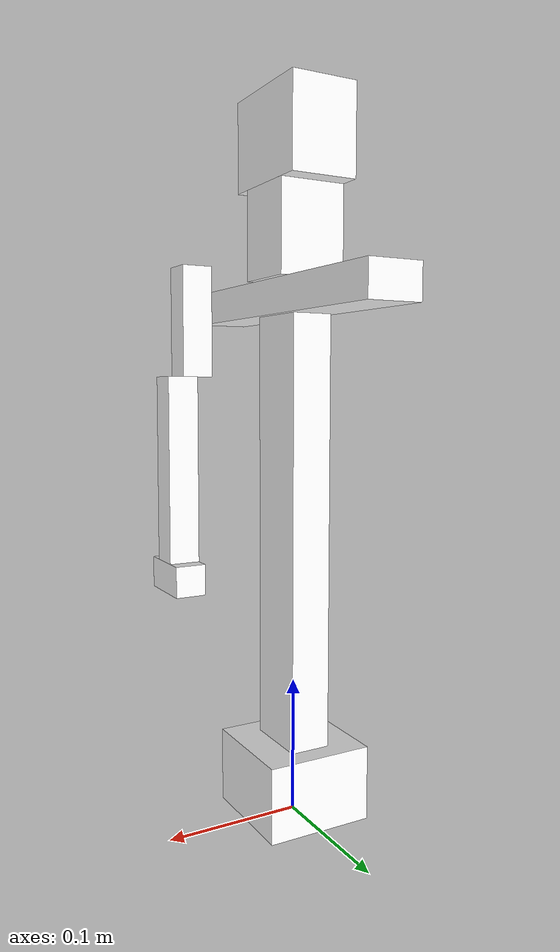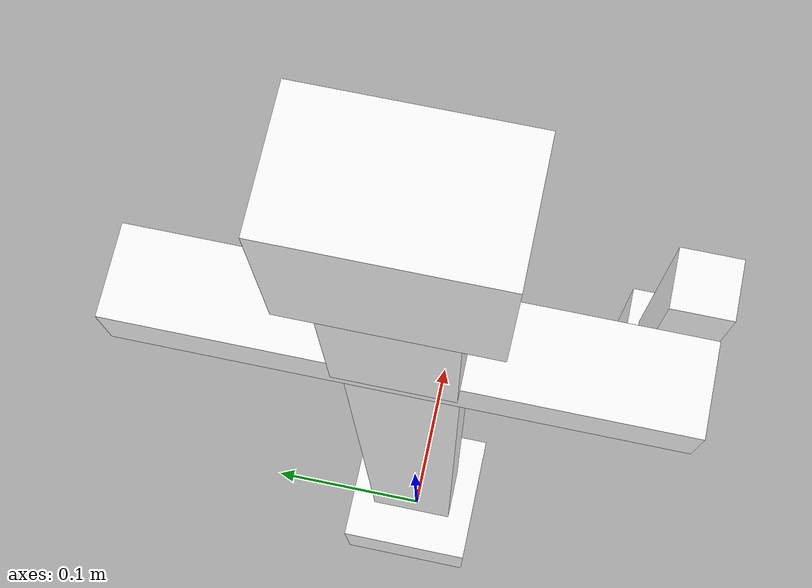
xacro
<?xml version="1.0" ?>
<!-- |    This document was autogenerated by xacro from /home/lucas/Desktop/robotics/natural_language_hubert/src/hubert_kinematics/urdf/test_robot.urdf.xacro | -->
<!-- |    EDITING THIS FILE BY HAND IS NOT RECOMMENDED                                 | -->
<robot name="hubert_robot">
    <material name="white">
        <color rgba="1 1 1 1" />
    </material>
    <link name="world" />
    <joint name="world_joint" type="fixed">
        <origin rpy="0 0 0" xyz="0 0 0" />
        <parent link="world" />
        <child link="base_link" />
    </joint>
    <link name="base_link">
        <visual>
            <origin rpy="0 0 0" xyz="0 0 0.0275" />
            <geometry>
                <box size="0.08 0.08 0.055" />
            </geometry>
            <material name="white" />
        </visual>
        <collision>
            <origin rpy="0 0 0" xyz="0 0 0.0275" />
            <geometry>
                <box size="0.08 0.08 0.055" />
            </geometry>
        </collision>
        <inertial>
            <origin rpy="0 0 0" xyz="0 0 0.0275" />
            <mass value="0.5" />
            <inertia ixx="0.0003927083333333333" ixy="0.0" ixz="0.0" iyy="0.0003927083333333333" iyz="0.0" izz="0.0005333333333333334" />
        </inertial>
    </link>
    <joint name="base_joint" type="revolute">
        <parent link="base_link" />
        <child link="body_link" />
        <origin rpy="0 0 0" xyz="0 0 0.055" />
        <axis xyz="0 0 1" />
        <limit effort="100" lower="-1.5707963267948966" upper="1.5707963267948966" velocity="100" />
    </joint>
    <link name="body_link">
        <visual>
            <origin rpy="0 0 0" xyz="0 0 0.1575" />
            <geometry>
                <box size="0.03 0.05 0.315" />
            </geometry>
            <material name="white" />
        </visual>
        <collision>
            <origin rpy="0 0 0" xyz="0 0 0.1575" />
            <geometry>
                <box size="0.03 0.05 0.315" />
            </geometry>
        </collision>
        <inertial>
            <origin rpy="0 0 0" xyz="0 0 0.1575" />
            <mass value="0.5" />
            <inertia ixx="0.0042385416666666665" ixy="0.0" ixz="0.0" iyy="0.004171875" iyz="0.0" izz="0.00014166666666666668" />
        </inertial>
    </link>
    <joint name="chest_joint" type="fixed">
        <parent link="body_link" />
        <child link="shoulder_link" />
        <origin rpy="0 0 0" xyz="0 0 0.315" />
    </joint>
    <link name="shoulder_link">
        <visual>
            <origin rpy="0 0 0" xyz="0 0 0.0125" />
            <geometry>
                <box size="0.04 0.24 0.025" />
            </geometry>
            <material name="white" />
        </visual>
        <collision>
            <origin rpy="0 0 0" xyz="0 0 0.0125" />
            <geometry>
                <box size="0.04 0.24 0.025" />
            </geometry>
        </collision>
        <inertial>
            <origin rpy="0 0 0" xyz="0 0 0.0125" />
            <mass value="0.5" />
            <inertia ixx="0.0024260416666666666" ixy="0.0" ixz="0.0" iyy="9.270833333333334e-05" iyz="0.0" izz="0.0024666666666666665" />
        </inertial>
    </link>
    <joint name="neck_joint" type="revolute">
        <parent link="shoulder_link" />
        <child link="neck_link" />
        <origin rpy="0 0 0" xyz="0 0 0.025" />
        <axis xyz="0 0 1" />
        <limit effort="100" lower="-1.5707963267948966" upper="1.5707963267948966" velocity="100" />
    </joint>
    <link name="neck_link">
        <visual>
            <origin rpy="0 0 0" xyz="0 0 0.0325" />
            <geometry>
                <box size="0.05 0.05 0.065" />
            </geometry>
            <material name="white" />
        </visual>
        <collision>
            <origin rpy="0 0 0" xyz="0 0 0.0325" />
            <geometry>
                <box size="0.05 0.05 0.065" />
            </geometry>
        </collision>
        <inertial>
            <origin rpy="0 0 0" xyz="0 0 0.0325" />
            <mass value="0.5" />
            <inertia ixx="0.00028020833333333337" ixy="0.0" ixz="0.0" iyy="0.00028020833333333337" iyz="0.0" izz="0.00020833333333333337" />
        </inertial>
    </link>
    <joint name="cam_joint" type="revolute">
        <parent link="neck_link" />
        <child link="cam_link" />
        <origin rpy="-1.57 0 0" xyz="0 0 0.065" />
        <axis xyz="0 0 1" />
        <limit effort="100" lower="-0.7853981633974483" upper="1.5707963267948966" velocity="100" />
    </joint>
    <!-- Here z => y and y => -z -->
    <link name="cam_link">
        <visual>
            <origin rpy="0 0 0" xyz="0 -0.0325 0" />
            <geometry>
                <box size="0.05 -0.065 0.08" />
            </geometry>
            <material name="white" />
        </visual>
        <collision>
            <origin rpy="0 0 0" xyz="0 -0.0325 0" />
            <geometry>
                <box size="0.05 0.065 0.08" />
            </geometry>
        </collision>
        <inertial>
            <origin rpy="0 0 0" xyz="0 -0.0325 0" />
            <mass value="0.5" />
            <inertia ixx="0.00044270833333333337" ixy="0.0" ixz="0.0" iyy="0.00037083333333333337" iyz="0.0" izz="0.00028020833333333337" />
        </inertial>
    </link>
    <joint name="camera_joint" type="fixed">
        <parent link="cam_link" />
        <child link="camera_link" />
        <origin rpy="0 1.5707963267948966 0" xyz="0 -0.07 0" />
    </joint>

    <link name="camera_link">
        <inertial>
            <mass value="0" />
            <inertia ixx="0" ixy="0" ixz="0" iyy="0" iyz="0" izz="0" />
        </inertial>
    </link>
    <joint name="shoulder_joint" type="revolute">
        <parent link="shoulder_link" />
        <child link="arm_link" />
        <origin rpy="1.57 0 0" xyz="0.034 -0.108 0.045" />
        <axis xyz="0 0 1" />
        <limit effort="100" lower="-0.5235987755982988" upper="1.5707963267948966" velocity="100" />
    </joint>
    <link name="arm_link">
        <visual>
            <origin rpy="0 0 0" xyz="0 -0.044 0" />
            <geometry>
                <box size="0.025 0.088 0.025" />
            </geometry>
            <material name="white" />
        </visual>
        <collision>
            <origin rpy="0 0 0" xyz="0 -0.044 0" />
            <geometry>
                <box size="0.025 0.088 0.025" />
            </geometry>
        </collision>
        <inertial>
            <origin rpy="0 0 0" xyz="0 -0.044 0" />
            <mass value="0.5" />
            <inertia ixx="0.0003487083333333333" ixy="0.0" ixz="0.0" iyy="5.2083333333333343e-05" iyz="0.0" izz="0.0003487083333333333" />
        </inertial>
    </link>
    <!-- Origin values to modify -->
    <!-- Should the origin be rotated again as the last joint already is? -->
    <joint name="elbow_joint" type="revolute">
        <parent link="arm_link" />
        <child link="forearm_link" />
        <origin rpy="0 0 0" xyz="0.015 -0.088 -0.005" />
        <axis xyz="0 0 1" />
        <limit effort="100" lower="-1.5707963267948966" upper="1.5707963267948966" velocity="100" />
    </joint>
    <link name="forearm_link">
        <visual>
            <origin rpy="0 0 0" xyz="0 -0.075 0 " />
            <geometry>
                <box size="0.025 0.15 0.025" />
            </geometry>
            <material name="white" />
        </visual>
        <collision>
            <origin rpy="0 0 0" xyz="0 -0.075 0" />
            <geometry>
                <box size="0.025 0.15 0.025" />
            </geometry>
        </collision>
        <inertial>
            <origin rpy="0 0 0" xyz="0 0 -0.102" />
            <mass value="0.5" />
            <inertia ixx="0.0017600416666666663" ixy="0.0" ixz="0.0" iyy="0.0017600416666666663" iyz="0.0" izz="5.2083333333333343e-05" />
        </inertial>
    </link>
    <!-- Axis values to modify -->
    <joint name="end_joint" type="fixed">
        <parent link="forearm_link" />
        <child link="end_effector" />
        <origin rpy="0 0 0" xyz="0 -0.15 0" />
        <axis xyz="0 0 0" />
    </joint>
    <link name="end_effector">
        <visual>
            <origin rpy="0 0 0" xyz="0 -0.0125 0" />
            <geometry>
                <box size="0.025 0.025 0.05" />
            </geometry>
            <material name="white" />
        </visual>
        <collision>
            <origin rpy="0 0 0" xyz="0 -0.0125 0" />
            <geometry>
                <box size="0.025 0.025 0.05" />
            </geometry>
        </collision>
        <inertial>
            <origin rpy="0 0 0" xyz="0 -0.0125 0" />
            <mass value="0.5" />
            <inertia ixx="0.00013020833333333336" ixy="0.0" ixz="0.0" iyy="0.00013020833333333336" iyz="0.0" izz="5.2083333333333343e-05" />
        </inertial>
    </link>
    <transmission name="trans_base_joint">
        <type>transmission_interface/SimpleTransmission</type>
        <joint name="base_joint">
            <hardwareInterface>hardware_interface/EffortJointInterface</hardwareInterface>
        </joint>
        <actuator name="base_joint_motor">
            <hardwareInterface>hardware_interface/EffortJointInterface</hardwareInterface>
            <mechanicalReduction>1</mechanicalReduction>
        </actuator>
    </transmission>
    <transmission name="trans_neck_joint">
        <type>transmission_interface/SimpleTransmission</type>
        <joint name="neck_joint">
            <hardwareInterface>hardware_interface/EffortJointInterface</hardwareInterface>
        </joint>
        <actuator name="neck_joint_motor">
            <hardwareInterface>hardware_interface/EffortJointInterface</hardwareInterface>
            <mechanicalReduction>1</mechanicalReduction>
        </actuator>
    </transmission>
    <transmission name="trans_cam_joint">
        <type>transmission_interface/SimpleTransmission</type>
        <joint name="cam_joint">
            <hardwareInterface>hardware_interface/EffortJointInterface</hardwareInterface>
        </joint>
        <actuator name="cam_joint_motor">
            <hardwareInterface>hardware_interface/EffortJointInterface</hardwareInterface>
            <mechanicalReduction>1</mechanicalReduction>
        </actuator>
    </transmission>
    <transmission name="trans_shoulder_joint">
        <type>transmission_interface/SimpleTransmission</type>
        <joint name="shoulder_joint">
            <hardwareInterface>hardware_interface/EffortJointInterface</hardwareInterface>
        </joint>
        <actuator name="shoulder_joint_motor">
            <hardwareInterface>hardware_interface/EffortJointInterface</hardwareInterface>
            <mechanicalReduction>1</mechanicalReduction>
        </actuator>
    </transmission>
    <transmission name="trans_elbow_joint">
        <type>transmission_interface/SimpleTransmission</type>
        <joint name="elbow_joint">
            <hardwareInterface>hardware_interface/EffortJointInterface</hardwareInterface>
        </joint>
        <actuator name="elbow_joint_motor">
            <hardwareInterface>hardware_interface/EffortJointInterface</hardwareInterface>
            <mechanicalReduction>1</mechanicalReduction>
        </actuator>
    </transmission>
    <gazebo>
        <plugin name="gazebo_ros_control" filename="libgazebo_ros_control.so">
            <robotNamespace>/</robotNamespace>
        </plugin>
    </gazebo>
</robot>
